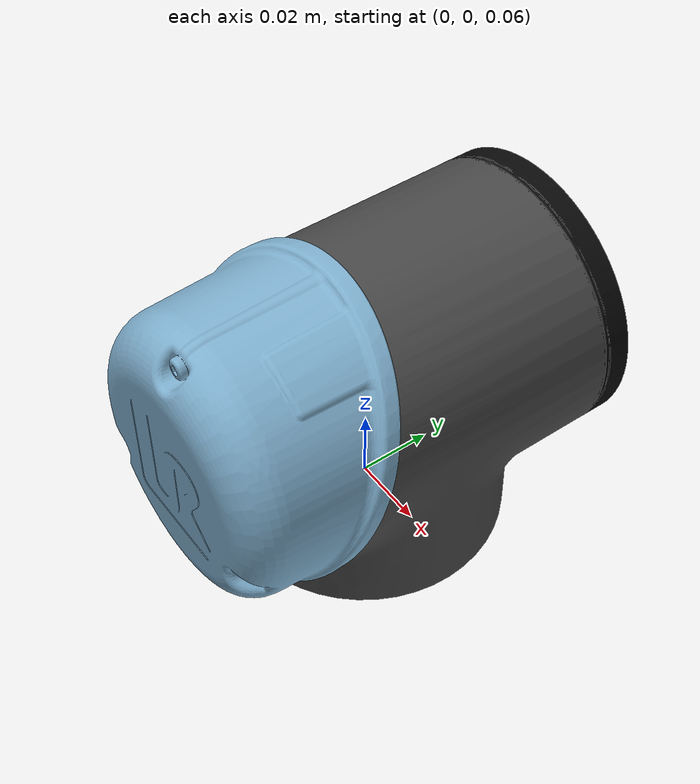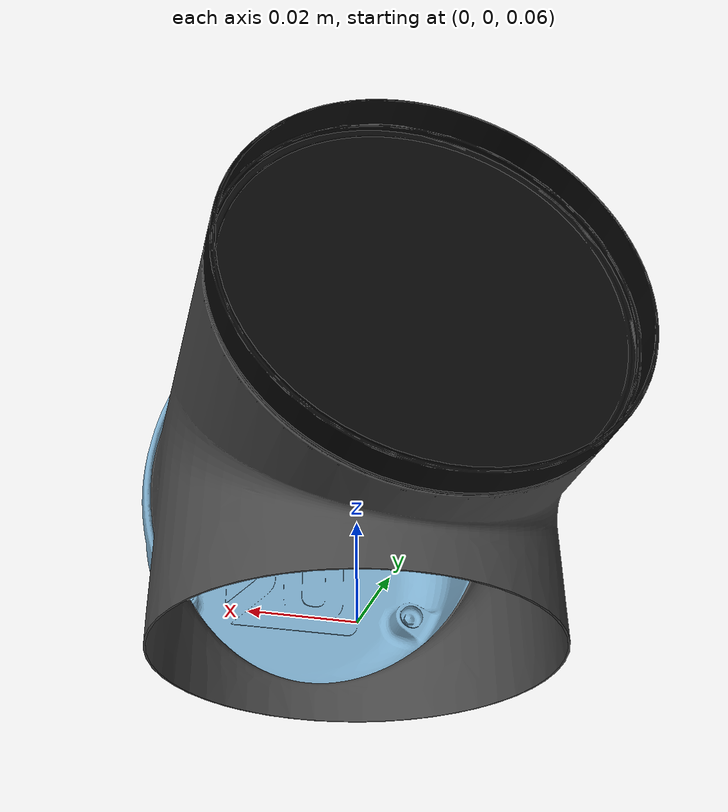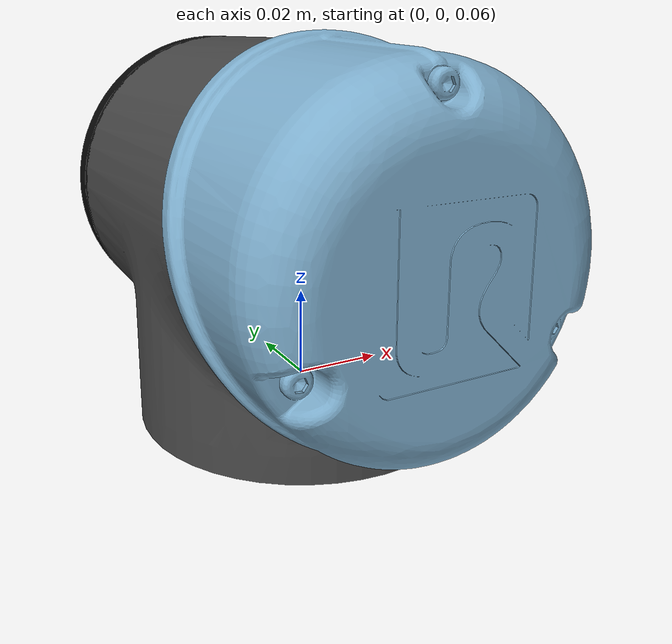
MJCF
<mujoco model="wrist2">
  <default>
    <default class="visual">
      <geom group="2" type="mesh" contype="0" conaffinity="0"/>
    </default>
    <default class="collision">
      <geom group="3" type="mesh"/>
    </default>
  </default>
  <asset>
    <material name="material_wrist2_0" specular="0.20000000000000004" shininess="1.0" rgba="0.27843137 0.27843137 0.27843137 1.0"/>
    <material name="material_wrist2_1" specular="0.20000000000000004" shininess="1.0" rgba="0.49019608 0.67843137 0.80000000 1.0"/>
    <material name="material_wrist2_2" specular="0.20000000000000004" shininess="1.0" rgba="0.03137255 0.03137255 0.03137255 1.0"/>
    <mesh file="wrist2_0.obj"/>
    <mesh file="wrist2_1.obj"/>
    <mesh file="wrist2_2.obj"/>
  </asset>
  <worldbody>
    <body name="wrist2">
      <geom mesh="wrist2_0" material="material_wrist2_2" class="visual"/>
      <geom mesh="wrist2_1" material="material_wrist2_1" class="visual"/>
      <geom mesh="wrist2_2" material="material_wrist2_0" class="visual"/>
      <geom mesh="wrist2_0" class="collision"/>
      <geom mesh="wrist2_1" class="collision"/>
      <geom mesh="wrist2_2" class="collision"/>
    </body>
  </worldbody>
</mujoco>
